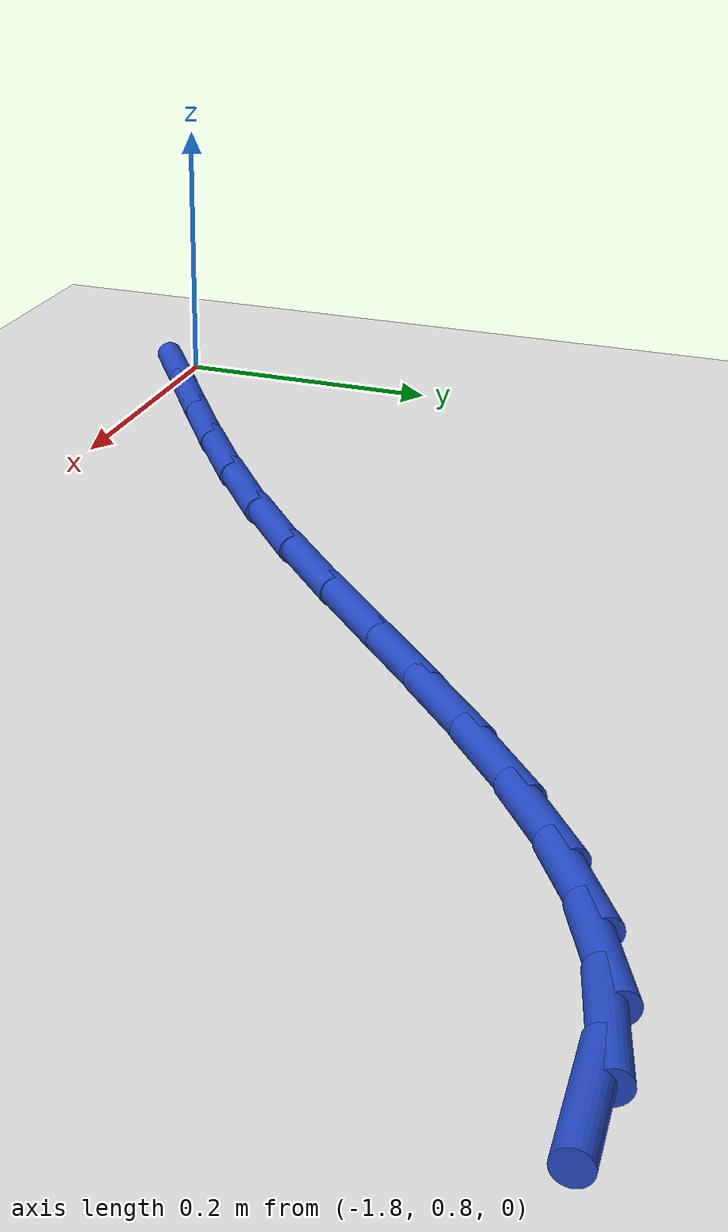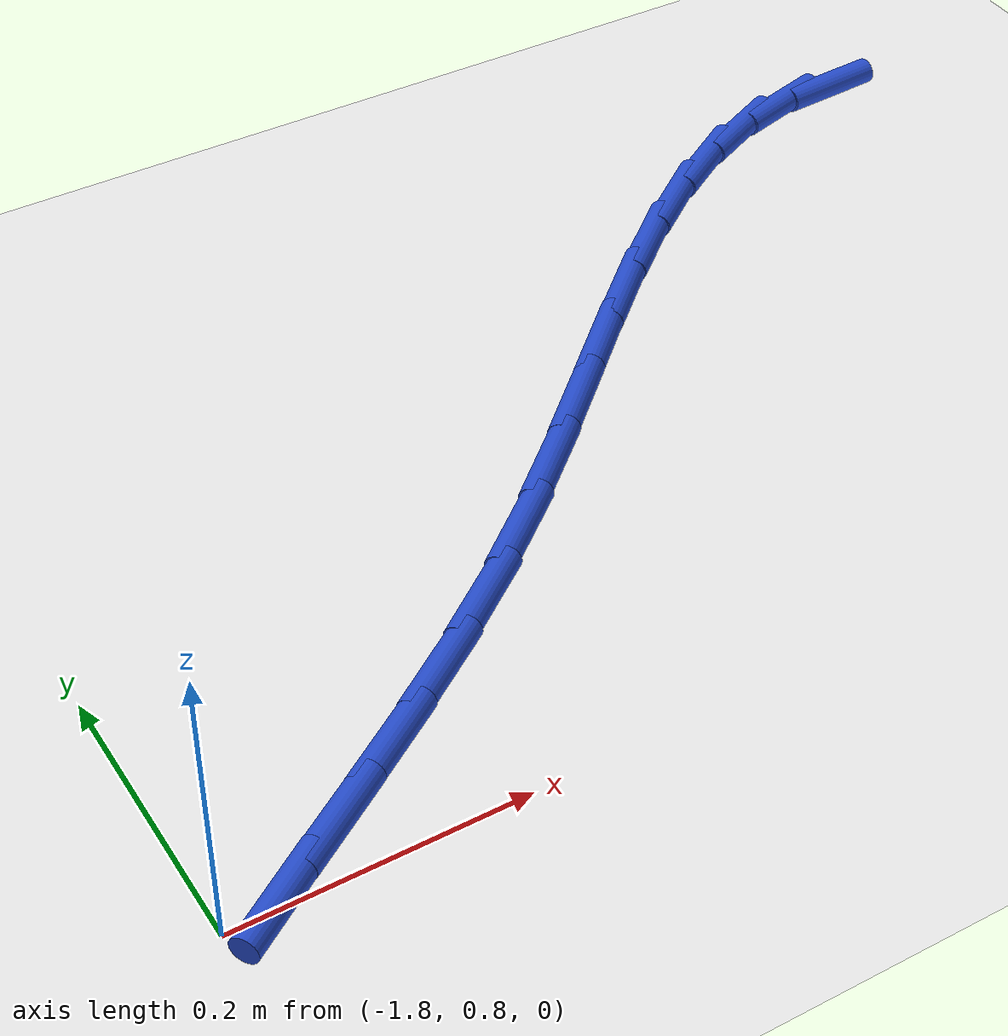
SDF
<sdf version="1.6">
 <world name="default">
  <model name="ground_plane">
   <static>1</static>
   <link name="link">
    <collision name="collision">
     <geometry><plane><normal>0 0 1</normal><size>100 100</size></plane></geometry>
     <surface><friction><ode><mu>100</mu><mu2>50</mu2></ode></friction></surface>
    </collision>
    <visual name="visual">
     <cast_shadows>0</cast_shadows>
     <geometry><plane><normal>0 0 1</normal><size>100 100</size></plane></geometry>
     <material>
      <script><uri>file://media/materials/scripts/gazebo.material</uri><name>Gazebo/WhiteGlow</name></script>
     </material>
    </visual>
   </link>
  </model>
  <model name="line">
   <link name="link_29">
    <pose>-1.0059271654857067 1.3205429167841176 0.01 0 1.57 0.06716040006250722</pose>
    <collision name="collision">
     <geometry><cylinder><radius>0.01</radius><length>0.08</length></cylinder></geometry>
    </collision>
    <visual name="visual">
     <material>
      <script><name>Gazebo/Blue</name><uri>file://media/materials/scripts/gazebo.material</uri></script>
     </material>
     <geometry><cylinder><radius>0.01</radius><length>0.08</length></cylinder></geometry>
    </visual>
   </link>
   <link name="link_30">
    <pose>-1.056416367231653 1.3171469343785827 0.01 0 1.57 0.2721676951063064</pose>
    <collision name="collision">
     <geometry><cylinder><radius>0.01</radius><length>0.08</length></cylinder></geometry>
    </collision>
    <visual name="visual">
     <material>
      <script><name>Gazebo/Blue</name><uri>file://media/materials/scripts/gazebo.material</uri></script>
     </material>
     <geometry><cylinder><radius>0.01</radius><length>0.08</length></cylinder></geometry>
    </visual>
   </link>
   <link name="link_31">
    <pose>-1.1058636853115116 1.3033465206681654 0.01 0 1.57 0.4376293900320193</pose>
    <collision name="collision">
     <geometry><cylinder><radius>0.01</radius><length>0.08</length></cylinder></geometry>
    </collision>
    <visual name="visual">
     <material>
      <script><name>Gazebo/Blue</name><uri>file://media/materials/scripts/gazebo.material</uri></script>
     </material>
     <geometry><cylinder><radius>0.01</radius><length>0.08</length></cylinder></geometry>
    </visual>
   </link>
   <link name="link_32">
    <pose>-1.1545398979878818 1.2805715179232373 0.01 0 1.57 0.5617247385164215</pose>
    <collision name="collision">
     <geometry><cylinder><radius>0.01</radius><length>0.08</length></cylinder></geometry>
    </collision>
    <visual name="visual">
     <material>
      <script><name>Gazebo/Blue</name><uri>file://media/materials/scripts/gazebo.material</uri></script>
     </material>
     <geometry><cylinder><radius>0.01</radius><length>0.08</length></cylinder></geometry>
    </visual>
   </link>
   <link name="link_33">
    <pose>-1.202715788266215 1.2502517895337473 0.01 0 1.57 0.6498091559823133</pose>
    <collision name="collision">
     <geometry><cylinder><radius>0.01</radius><length>0.08</length></cylinder></geometry>
    </collision>
    <visual name="visual">
     <material>
      <script><name>Gazebo/Blue</name><uri>file://media/materials/scripts/gazebo.material</uri></script>
     </material>
     <geometry><cylinder><radius>0.01</radius><length>0.08</length></cylinder></geometry>
    </visual>
   </link>
   <link name="link_34">
    <pose>-1.2506621391519623 1.213817198889643 0.01 0 1.57 0.7084744771230171</pose>
    <collision name="collision">
     <geometry><cylinder><radius>0.01</radius><length>0.08</length></cylinder></geometry>
    </collision>
    <visual name="visual">
     <material>
      <script><name>Gazebo/Blue</name><uri>file://media/materials/scripts/gazebo.material</uri></script>
     </material>
     <geometry><cylinder><radius>0.01</radius><length>0.08</length></cylinder></geometry>
    </visual>
   </link>
   <link name="link_35">
    <pose>-1.2986497336505758 1.1726976093808708 0.01 0 1.57 0.7430719728927632</pose>
    <collision name="collision">
     <geometry><cylinder><radius>0.01</radius><length>0.08</length></cylinder></geometry>
    </collision>
    <visual name="visual">
     <material>
      <script><name>Gazebo/Blue</name><uri>file://media/materials/scripts/gazebo.material</uri></script>
     </material>
     <geometry><cylinder><radius>0.01</radius><length>0.08</length></cylinder></geometry>
    </visual>
   </link>
   <link name="link_36">
    <pose>-1.346949354767507 1.1283228843973803 0.01 0 1.57 0.7571939786080818</pose>
    <collision name="collision">
     <geometry><cylinder><radius>0.01</radius><length>0.08</length></cylinder></geometry>
    </collision>
    <visual name="visual">
     <material>
      <script><name>Gazebo/Blue</name><uri>file://media/materials/scripts/gazebo.material</uri></script>
     </material>
     <geometry><cylinder><radius>0.01</radius><length>0.08</length></cylinder></geometry>
    </visual>
   </link>
   <link name="link_37">
    <pose>-1.3958317855082085 1.0821228873291187 0.01 0 1.57 0.752807495751473</pose>
    <collision name="collision">
     <geometry><cylinder><radius>0.01</radius><length>0.08</length></cylinder></geometry>
    </collision>
    <visual name="visual">
     <material>
      <script><name>Gazebo/Blue</name><uri>file://media/materials/scripts/gazebo.material</uri></script>
     </material>
     <geometry><cylinder><radius>0.01</radius><length>0.08</length></cylinder></geometry>
    </visual>
   </link>
   <link name="link_38">
    <pose>-1.4455678088781305 1.0355274815660338 0.01 0 1.57 0.7304920510056169</pose>
    <collision name="collision">
     <geometry><cylinder><radius>0.01</radius><length>0.08</length></cylinder></geometry>
    </collision>
    <visual name="visual">
     <material>
      <script><name>Gazebo/Blue</name><uri>file://media/materials/scripts/gazebo.material</uri></script>
     </material>
     <geometry><cylinder><radius>0.01</radius><length>0.08</length></cylinder></geometry>
    </visual>
   </link>
   <link name="link_39">
    <pose>-1.4964282078827258 0.9899665304980731 0.01 0 1.57 0.6898081828997987</pose>
    <collision name="collision">
     <geometry><cylinder><radius>0.01</radius><length>0.08</length></cylinder></geometry>
    </collision>
    <visual name="visual">
     <material>
      <script><name>Gazebo/Blue</name><uri>file://media/materials/scripts/gazebo.material</uri></script>
     </material>
     <geometry><cylinder><radius>0.01</radius><length>0.08</length></cylinder></geometry>
    </visual>
   </link>
   <link name="link_40">
    <pose>-1.5486787169370642 0.9468591458824932 0.01 0 1.57 0.6415144676613864</pose>
    <collision name="collision">
     <geometry><cylinder><radius>0.01</radius><length>0.08</length></cylinder></geometry>
    </collision>
    <visual name="visual">
     <material>
      <script><name>Gazebo/Blue</name><uri>file://media/materials/scripts/gazebo.material</uri></script>
     </material>
     <geometry><cylinder><radius>0.01</radius><length>0.08</length></cylinder></geometry>
    </visual>
   </link>
   <link name="link_41">
    <pose>-1.6022277041461086 0.9068633812379838 0.01 0 1.57 0.6052542684939637</pose>
    <collision name="collision">
     <geometry><cylinder><radius>0.01</radius><length>0.08</length></cylinder></geometry>
    </collision>
    <visual name="visual">
     <material>
      <script><name>Gazebo/Blue</name><uri>file://media/materials/scripts/gazebo.material</uri></script>
     </material>
     <geometry><cylinder><radius>0.01</radius><length>0.08</length></cylinder></geometry>
    </visual>
   </link>
   <link name="link_42">
    <pose>-1.6563958108162673 0.8693856490935449 0.01 0 1.57 0.5833054810836942</pose>
    <collision name="collision">
     <geometry><cylinder><radius>0.01</radius><length>0.08</length></cylinder></geometry>
    </collision>
    <visual name="visual">
     <material>
      <script><name>Gazebo/Blue</name><uri>file://media/materials/scripts/gazebo.material</uri></script>
     </material>
     <geometry><cylinder><radius>0.01</radius><length>0.08</length></cylinder></geometry>
    </visual>
   </link>
   <link name="link_43">
    <pose>-1.7104489521179997 0.8337158155230379 0.01 0 1.57 0.5762352778929001</pose>
    <collision name="collision">
     <geometry><cylinder><radius>0.01</radius><length>0.08</length></cylinder></geometry>
    </collision>
    <visual name="visual">
     <material>
      <script><name>Gazebo/Blue</name><uri>file://media/materials/scripts/gazebo.material</uri></script>
     </material>
     <geometry><cylinder><radius>0.01</radius><length>0.08</length></cylinder></geometry>
    </visual>
   </link>
   <link name="link_44">
    <pose>-1.7636530432217659 0.7991437466003245 0.01 0 1.57 0.5849179375810956</pose>
    <collision name="collision">
     <geometry><cylinder><radius>0.01</radius><length>0.08</length></cylinder></geometry>
    </collision>
    <visual name="visual">
     <material>
      <script><name>Gazebo/Blue</name><uri>file://media/materials/scripts/gazebo.material</uri></script>
     </material>
     <geometry><cylinder><radius>0.01</radius><length>0.08</length></cylinder></geometry>
    </visual>
   </link>
  </model>
 </world>
</sdf>
